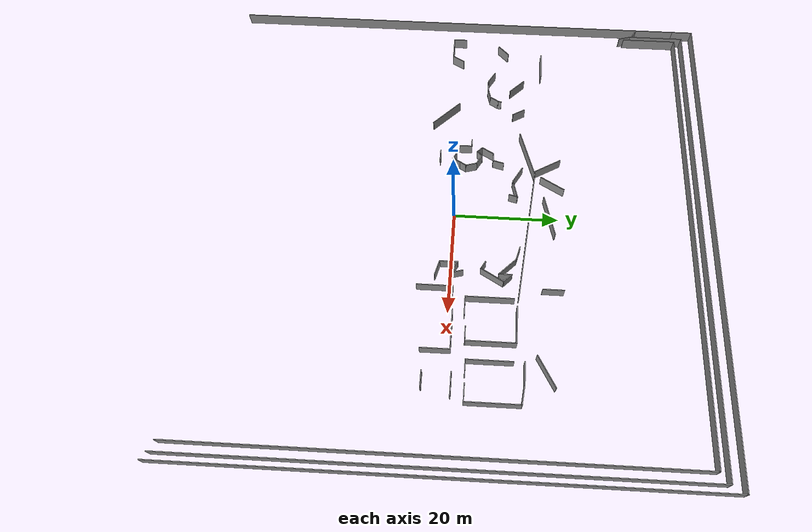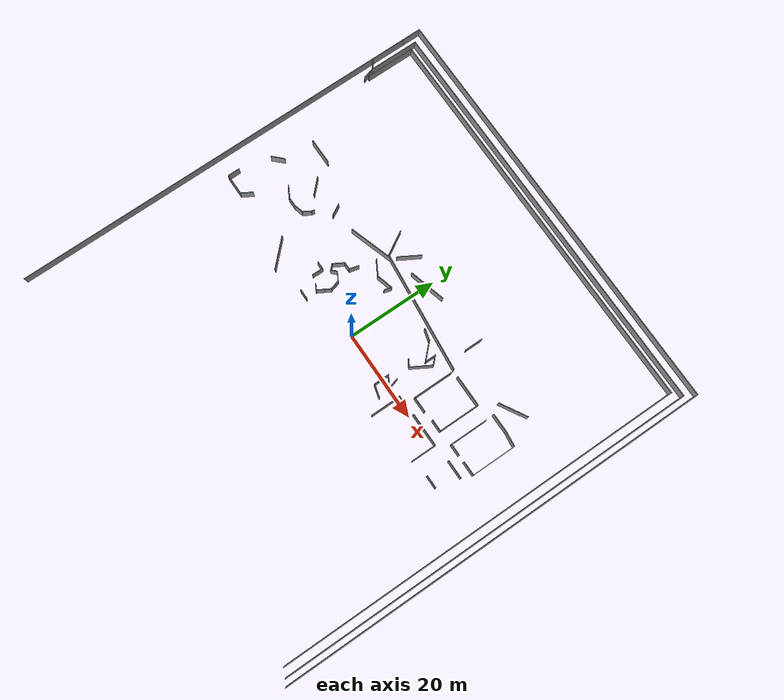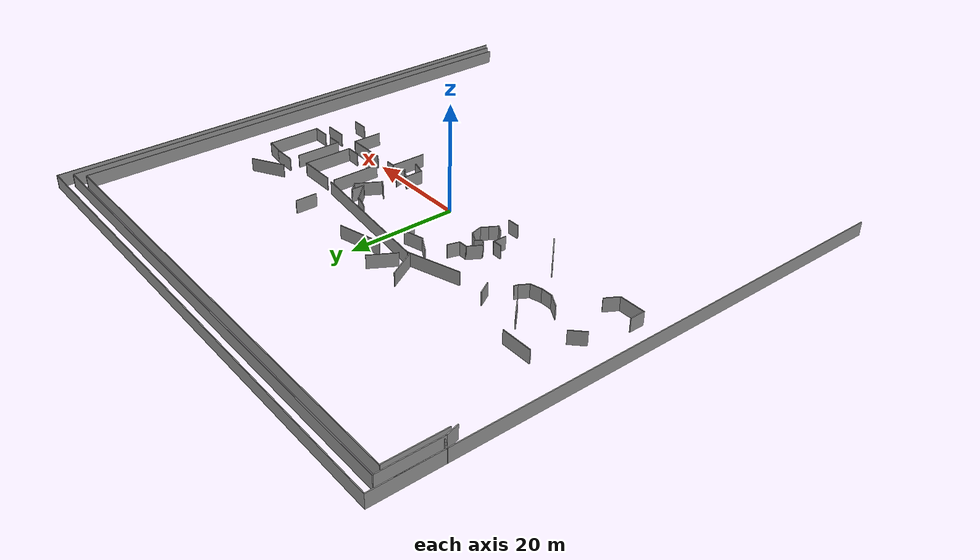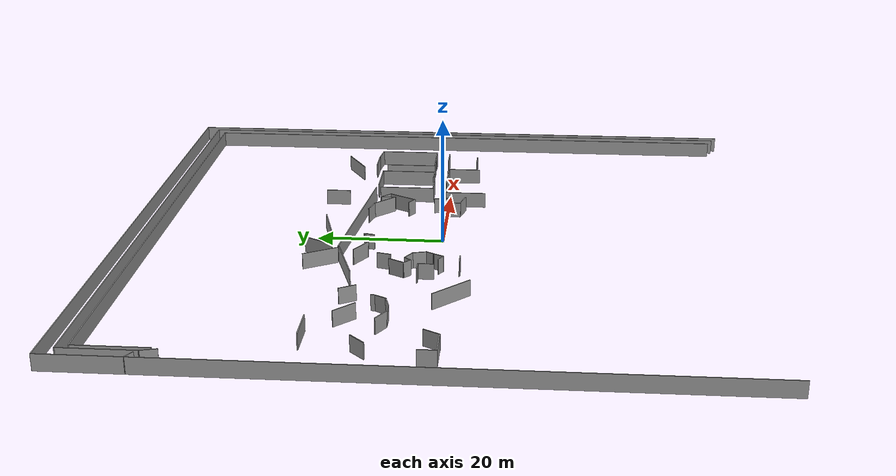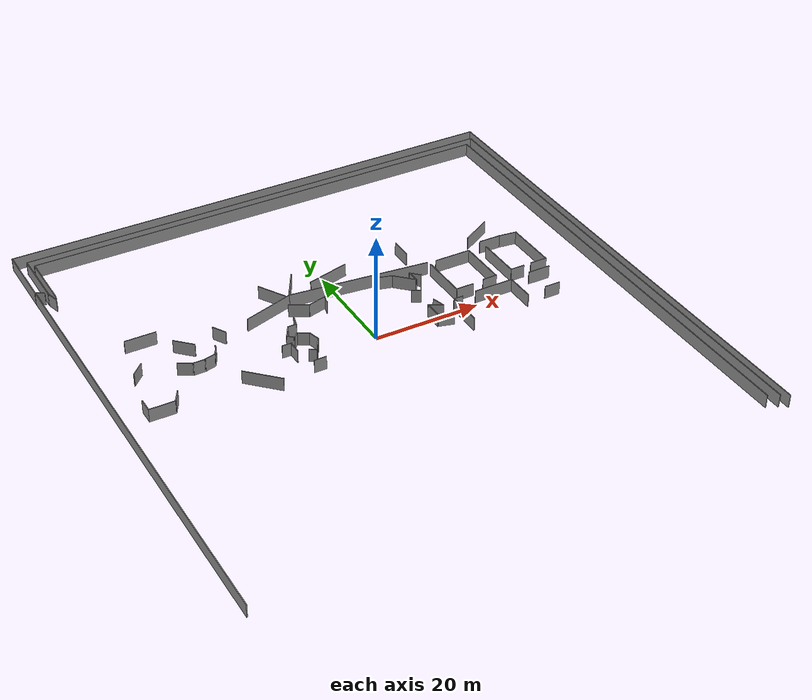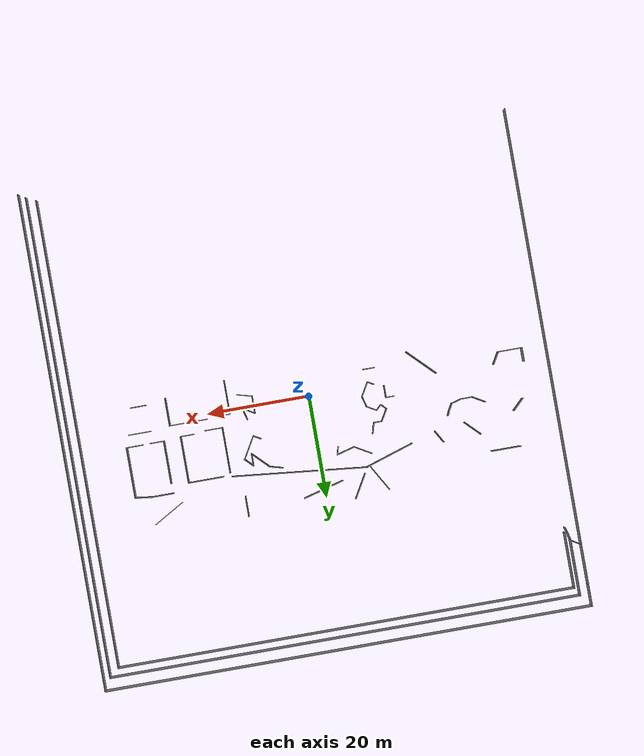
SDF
<sdf version="1.6">
 <model name="zee_floor">
  <pose>0.886578 0.586712 0 0 -0 0</pose>
  <link name="Wall_0">
   <collision name="Wall_0_Collision">
    <geometry><box><size>26.4253 0.15 2.5</size></box></geometry>
    <pose>0 0 1.25 0 -0 0</pose>
   </collision>
   <visual name="Wall_0_Visual">
    <pose>0 0 1.25 0 -0 0</pose>
    <geometry><box><size>26.4253 0.15 2.5</size></box></geometry>
    <material>
     <script><uri>file://media/materials/scripts/gazebo.material</uri><name>Gazebo/Grey</name></script>
     <ambient>1 1 1 1</ambient>
    </material>
    <meta><layer>0</layer></meta>
   </visual>
   <pose>3.36463 13.4505 0 0 -0 -0.104972</pose>
  </link>
  <link name="Wall_127">
   <collision name="Wall_127_Collision">
    <geometry><box><size>93.5 0.15 2.5</size></box></geometry>
    <pose>0 0 1.25 0 -0 0</pose>
   </collision>
   <visual name="Wall_127_Visual">
    <pose>0 0 1.25 0 -0 0</pose>
    <geometry><box><size>93.5 0.15 2.5</size></box></geometry>
    <material>
     <script><uri>file://media/materials/scripts/gazebo.material</uri><name>Gazebo/Grey</name></script>
     <ambient>1 1 1 1</ambient>
    </material>
    <meta><layer>0</layer></meta>
   </visual>
   <pose>-47.7863 -2.125 0 0 -0 -1.5708</pose>
  </link>
  <link name="Wall_129">
   <collision name="Wall_129_Collision">
    <geometry><box><size>97.75 0.15 2.5</size></box></geometry>
    <pose>0 0 1.25 0 -0 0</pose>
   </collision>
   <visual name="Wall_129_Visual">
    <pose>0 0 1.25 0 -0 0</pose>
    <geometry><box><size>97.75 0.15 2.5</size></box></geometry>
    <material>
     <script><uri>file://media/materials/scripts/gazebo.material</uri><name>Gazebo/Grey</name></script>
     <ambient>1 1 1 1</ambient>
    </material>
    <meta><layer>0</layer></meta>
   </visual>
   <pose>47.8137 -0 0 0 -0 1.5708</pose>
  </link>
  <link name="Wall_13">
   <collision name="Wall_13_Collision">
    <geometry><box><size>2.25 0.15 2.5</size></box></geometry>
    <pose>0 0 1.25 0 -0 0</pose>
   </collision>
   <visual name="Wall_13_Visual">
    <pose>0 0 1.25 0 -0 0</pose>
    <geometry><box><size>2.25 0.15 2.5</size></box></geometry>
    <material>
     <script><uri>file://media/materials/scripts/gazebo.material</uri><name>Gazebo/Grey</name></script>
     <ambient>1 1 1 1</ambient>
    </material>
    <meta><layer>0</layer></meta>
   </visual>
   <pose>-13.2389 -3.96174 0 0 -0 0</pose>
  </link>
  <link name="Wall_130">
   <collision name="Wall_130_Collision">
    <geometry><box><size>95.75 0.15 2.5</size></box></geometry>
    <pose>0 0 1.25 0 -0 0</pose>
   </collision>
   <visual name="Wall_130_Visual">
    <pose>0 0 1.25 0 -0 0</pose>
    <geometry><box><size>95.75 0.15 2.5</size></box></geometry>
    <material>
     <script><uri>file://media/materials/scripts/gazebo.material</uri><name>Gazebo/Grey</name></script>
     <ambient>1 1 1 1</ambient>
    </material>
    <meta><layer>0</layer></meta>
   </visual>
   <pose>0.013723 48.8 0 0 -0 3.14159</pose>
  </link>
  <link name="Wall_131">
   <collision name="Wall_131_Collision">
    <geometry><box><size>12.25 0.15 2.5</size></box></geometry>
    <pose>0 0 1.25 0 -0 0</pose>
   </collision>
   <visual name="Wall_131_Visual">
    <pose>0 0 1.25 0 -0 0</pose>
    <geometry><box><size>12.25 0.15 2.5</size></box></geometry>
    <material>
     <script><uri>file://media/materials/scripts/gazebo.material</uri><name>Gazebo/Grey</name></script>
     <ambient>1 1 1 1</ambient>
    </material>
    <meta><layer>0</layer></meta>
   </visual>
   <pose>-47.7863 42.75 0 0 -0 -1.5708</pose>
  </link>
  <link name="Wall_132">
   <collision name="Wall_132_Collision">
    <geometry><box><size>1.75 0.15 2.5</size></box></geometry>
    <pose>0 0 1.25 0 -0 0</pose>
   </collision>
   <visual name="Wall_132_Visual">
    <pose>0 0 1.25 0 -0 0</pose>
    <geometry><box><size>1.75 0.15 2.5</size></box></geometry>
    <material>
     <script><uri>file://media/materials/scripts/gazebo.material</uri><name>Gazebo/Grey</name></script>
     <ambient>1 1 1 1</ambient>
    </material>
    <meta><layer>0</layer></meta>
   </visual>
   <pose>-47.0935 36.3 0 0 -0 -0.523599</pose>
  </link>
  <link name="Wall_135">
   <collision name="Wall_135_Collision">
    <geometry><box><size>94.5 0.15 2.5</size></box></geometry>
    <pose>0 0 1.25 0 -0 0</pose>
   </collision>
   <visual name="Wall_135_Visual">
    <pose>0 0 1.25 0 -0 0</pose>
    <geometry><box><size>94.5 0.15 2.5</size></box></geometry>
    <material>
     <script><uri>file://media/materials/scripts/gazebo.material</uri><name>Gazebo/Grey</name></script>
     <ambient>1 1 1 1</ambient>
    </material>
    <meta><layer>0</layer></meta>
   </visual>
   <pose>46.4494 -0.775 0 0 -0 1.5708</pose>
  </link>
  <link name="Wall_136">
   <collision name="Wall_136_Collision">
    <geometry><box><size>92.5 0.15 2.5</size></box></geometry>
    <pose>0 0 1.25 0 -0 0</pose>
   </collision>
   <visual name="Wall_136_Visual">
    <pose>0 0 1.25 0 -0 0</pose>
    <geometry><box><size>92.5 0.15 2.5</size></box></geometry>
    <material>
     <script><uri>file://media/materials/scripts/gazebo.material</uri><name>Gazebo/Grey</name></script>
     <ambient>1 1 1 1</ambient>
    </material>
    <meta><layer>0</layer></meta>
   </visual>
   <pose>0.274363 46.4 0 0 -0 3.14159</pose>
  </link>
  <link name="Wall_137">
   <collision name="Wall_137_Collision">
    <geometry><box><size>11.25 0.15 2.5</size></box></geometry>
    <pose>0 0 1.25 0 -0 0</pose>
   </collision>
   <visual name="Wall_137_Visual">
    <pose>0 0 1.25 0 -0 0</pose>
    <geometry><box><size>11.25 0.15 2.5</size></box></geometry>
    <material>
     <script><uri>file://media/materials/scripts/gazebo.material</uri><name>Gazebo/Grey</name></script>
     <ambient>1 1 1 1</ambient>
    </material>
    <meta><layer>0</layer></meta>
   </visual>
   <pose>-45.9006 40.85 0 0 -0 -1.5708</pose>
  </link>
  <link name="Wall_138">
   <collision name="Wall_138_Collision">
    <geometry><box><size>2.5 0.15 2.5</size></box></geometry>
    <pose>0 0 1.25 0 -0 0</pose>
   </collision>
   <visual name="Wall_138_Visual">
    <pose>0 0 1.25 0 -0 0</pose>
    <geometry><box><size>2.5 0.15 2.5</size></box></geometry>
    <material>
     <script><uri>file://media/materials/scripts/gazebo.material</uri><name>Gazebo/Grey</name></script>
     <ambient>1 1 1 1</ambient>
    </material>
    <meta><layer>0</layer></meta>
   </visual>
   <pose>-45.5965 34.165 0 0 -0 -1.309</pose>
  </link>
  <link name="Wall_141">
   <collision name="Wall_141_Collision">
    <geometry><box><size>92 0.15 2.5</size></box></geometry>
    <pose>0 0 1.25 0 -0 0</pose>
   </collision>
   <visual name="Wall_141_Visual">
    <pose>0 0 1.25 0 -0 0</pose>
    <geometry><box><size>92 0.15 2.5</size></box></geometry>
    <material>
     <script><uri>file://media/materials/scripts/gazebo.material</uri><name>Gazebo/Grey</name></script>
     <ambient>1 1 1 1</ambient>
    </material>
    <meta><layer>0</layer></meta>
   </visual>
   <pose>44.5576 -1.14493 0 0 -0 1.5708</pose>
  </link>
  <link name="Wall_142">
   <collision name="Wall_142_Collision">
    <geometry><box><size>89.75 0.15 2.5</size></box></geometry>
    <pose>0 0 1.25 0 -0 0</pose>
   </collision>
   <visual name="Wall_142_Visual">
    <pose>0 0 1.25 0 -0 0</pose>
    <geometry><box><size>89.75 0.15 2.5</size></box></geometry>
    <material>
     <script><uri>file://media/materials/scripts/gazebo.material</uri><name>Gazebo/Grey</name></script>
     <ambient>1 1 1 1</ambient>
    </material>
    <meta><layer>0</layer></meta>
   </visual>
   <pose>-0.242412 44.7801 0 0 -0 3.14159</pose>
  </link>
  <link name="Wall_143">
   <collision name="Wall_143_Collision">
    <geometry><box><size>11 0.15 2.5</size></box></geometry>
    <pose>0 0 1.25 0 -0 0</pose>
   </collision>
   <visual name="Wall_143_Visual">
    <pose>0 0 1.25 0 -0 0</pose>
    <geometry><box><size>11 0.15 2.5</size></box></geometry>
    <material>
     <script><uri>file://media/materials/scripts/gazebo.material</uri><name>Gazebo/Grey</name></script>
     <ambient>1 1 1 1</ambient>
    </material>
    <meta><layer>0</layer></meta>
   </visual>
   <pose>-45.0424 39.3551 0 0 -0 -1.5708</pose>
  </link>
  <link name="Wall_15">
   <collision name="Wall_15_Collision">
    <geometry><box><size>1.75 0.15 2.5</size></box></geometry>
    <pose>0 0 1.25 0 -0 0</pose>
   </collision>
   <visual name="Wall_15_Visual">
    <pose>0 0 1.25 0 -0 0</pose>
    <geometry><box><size>1.75 0.15 2.5</size></box></geometry>
    <material>
     <script><uri>file://media/materials/scripts/gazebo.material</uri><name>Gazebo/Grey</name></script>
     <ambient>1 1 1 1</ambient>
    </material>
    <meta><layer>0</layer></meta>
   </visual>
   <pose>-16.3464 2.1476 0 0 -0 0</pose>
  </link>
  <link name="Wall_16">
   <collision name="Wall_16_Collision">
    <geometry><box><size>2.5 0.15 2.5</size></box></geometry>
    <pose>0 0 1.25 0 -0 0</pose>
   </collision>
   <visual name="Wall_16_Visual">
    <pose>0 0 1.25 0 -0 0</pose>
    <geometry><box><size>2.5 0.15 2.5</size></box></geometry>
    <material>
     <script><uri>file://media/materials/scripts/gazebo.material</uri><name>Gazebo/Grey</name></script>
     <ambient>1 1 1 1</ambient>
    </material>
    <meta><layer>0</layer></meta>
   </visual>
   <pose>-15.5464 0.972602 0 0 -0 -1.5708</pose>
  </link>
  <link name="Wall_163">
   <collision name="Wall_163_Collision">
    <geometry><box><size>5.75 0.15 2.5</size></box></geometry>
    <pose>0 0 1.25 0 -0 0</pose>
   </collision>
   <visual name="Wall_163_Visual">
    <pose>0 0 1.25 0 -0 0</pose>
    <geometry><box><size>5.75 0.15 2.5</size></box></geometry>
    <material>
     <script><uri>file://media/materials/scripts/gazebo.material</uri><name>Gazebo/Grey</name></script>
     <ambient>1 1 1 1</ambient>
    </material>
    <meta><layer>0</layer></meta>
   </visual>
   <pose>-11.6937 17.3049 0 0 -0 2.0944</pose>
  </link>
  <link name="Wall_165">
   <collision name="Wall_165_Collision">
    <geometry><box><size>5.25 0.15 2.5</size></box></geometry>
    <pose>0 0 1.25 0 -0 0</pose>
   </collision>
   <visual name="Wall_165_Visual">
    <pose>0 0 1.25 0 -0 0</pose>
    <geometry><box><size>5.25 0.15 2.5</size></box></geometry>
    <material>
     <script><uri>file://media/materials/scripts/gazebo.material</uri><name>Gazebo/Grey</name></script>
     <ambient>1 1 1 1</ambient>
    </material>
    <meta><layer>0</layer></meta>
   </visual>
   <pose>-7.70866 18.2113 0 0 -0 1.0472</pose>
  </link>
  <link name="Wall_167">
   <collision name="Wall_167_Collision">
    <geometry><box><size>8.25 0.15 2.5</size></box></geometry>
    <pose>0 0 1.25 0 -0 0</pose>
   </collision>
   <visual name="Wall_167_Visual">
    <pose>0 0 1.25 0 -0 0</pose>
    <geometry><box><size>8.25 0.15 2.5</size></box></geometry>
    <material>
     <script><uri>file://media/materials/scripts/gazebo.material</uri><name>Gazebo/Grey</name></script>
     <ambient>1 1 1 1</ambient>
    </material>
    <meta><layer>0</layer></meta>
   </visual>
   <pose>-0.580004 17.6126 0 0 -0 0.261799</pose>
  </link>
  <link name="Wall_169">
   <collision name="Wall_169_Collision">
    <geometry><box><size>4 0.15 2.5</size></box></geometry>
    <pose>0 0 1.25 0 -0 0</pose>
   </collision>
   <visual name="Wall_169_Visual">
    <pose>0 0 1.25 0 -0 0</pose>
    <geometry><box><size>4 0.15 2.5</size></box></geometry>
    <material>
     <script><uri>file://media/materials/scripts/gazebo.material</uri><name>Gazebo/Grey</name></script>
     <ambient>1 1 1 1</ambient>
    </material>
    <meta><layer>0</layer></meta>
   </visual>
   <pose>14.5975 18.3023 0 0 -0 1.5708</pose>
  </link>
  <link name="Wall_171">
   <collision name="Wall_171_Collision">
    <geometry><box><size>6.5 0.15 2.5</size></box></geometry>
    <pose>0 0 1.25 0 -0 0</pose>
   </collision>
   <visual name="Wall_171_Visual">
    <pose>0 0 1.25 0 -0 0</pose>
    <geometry><box><size>6.5 0.15 2.5</size></box></geometry>
    <material>
     <script><uri>file://media/materials/scripts/gazebo.material</uri><name>Gazebo/Grey</name></script>
     <ambient>1 1 1 1</ambient>
    </material>
    <meta><layer>0</layer></meta>
   </visual>
   <pose>29.6992 17.029 0 0 -0 0.523599</pose>
  </link>
  <link name="Wall_18">
   <collision name="Wall_18_Collision">
    <geometry><box><size>1.5 0.15 2.5</size></box></geometry>
    <pose>0 0 1.25 0 -0 0</pose>
   </collision>
   <visual name="Wall_18_Visual">
    <pose>0 0 1.25 0 -0 0</pose>
    <geometry><box><size>1.5 0.15 2.5</size></box></geometry>
    <material>
     <script><uri>file://media/materials/scripts/gazebo.material</uri><name>Gazebo/Grey</name></script>
     <ambient>1 1 1 1</ambient>
    </material>
    <meta><layer>0</layer></meta>
   </visual>
   <pose>-13.0774 -1.1172 0 0 -0 -0.523599</pose>
  </link>
  <link name="Wall_187">
   <collision name="Wall_187_Collision">
    <geometry><box><size>2.75 0.15 2.5</size></box></geometry>
    <pose>0 0 1.25 0 -0 0</pose>
   </collision>
   <visual name="Wall_187_Visual">
    <pose>0 0 1.25 0 -0 0</pose>
    <geometry><box><size>2.75 0.15 2.5</size></box></geometry>
    <material>
     <script><uri>file://media/materials/scripts/gazebo.material</uri><name>Gazebo/Grey</name></script>
     <ambient>1 1 1 1</ambient>
    </material>
    <meta><layer>0</layer></meta>
   </visual>
   <pose>-43.0551 -1.49284 0 0 -0 -1.5708</pose>
  </link>
  <link name="Wall_188">
   <collision name="Wall_188_Collision">
    <geometry><box><size>4.75 0.15 2.5</size></box></geometry>
    <pose>0 0 1.25 0 -0 0</pose>
   </collision>
   <visual name="Wall_188_Visual">
    <pose>0 0 1.25 0 -0 0</pose>
    <geometry><box><size>4.75 0.15 2.5</size></box></geometry>
    <material>
     <script><uri>file://media/materials/scripts/gazebo.material</uri><name>Gazebo/Grey</name></script>
     <ambient>1 1 1 1</ambient>
    </material>
    <meta><layer>0</layer></meta>
   </visual>
   <pose>-40.7551 -2.79284 0 0 -0 0</pose>
  </link>
  <link name="Wall_189">
   <collision name="Wall_189_Collision">
    <geometry><box><size>2.75 0.15 2.5</size></box></geometry>
    <pose>0 0 1.25 0 -0 0</pose>
   </collision>
   <visual name="Wall_189_Visual">
    <pose>0 0 1.25 0 -0 0</pose>
    <geometry><box><size>2.75 0.15 2.5</size></box></geometry>
    <material>
     <script><uri>file://media/materials/scripts/gazebo.material</uri><name>Gazebo/Grey</name></script>
     <ambient>1 1 1 1</ambient>
    </material>
    <meta><layer>0</layer></meta>
   </visual>
   <pose>-37.8051 -1.667 0 0 -0 1.0472</pose>
  </link>
  <link name="Wall_19">
   <collision name="Wall_19_Collision">
    <geometry><box><size>1.88298 0.15 2.5</size></box></geometry>
    <pose>0 0 1.25 0 -0 0</pose>
   </collision>
   <visual name="Wall_19_Visual">
    <pose>0 0 1.25 0 -0 0</pose>
    <geometry><box><size>1.88298 0.15 2.5</size></box></geometry>
    <material>
     <script><uri>file://media/materials/scripts/gazebo.material</uri><name>Gazebo/Grey</name></script>
     <ambient>1 1 1 1</ambient>
    </material>
    <meta><layer>0</layer></meta>
   </visual>
   <pose>-12.1071 -0.703548 0 0 -0 1.04892</pose>
  </link>
  <link name="Wall_194">
   <collision name="Wall_194_Collision">
    <geometry><box><size>2.75 0.15 2.5</size></box></geometry>
    <pose>0 0 1.25 0 -0 0</pose>
   </collision>
   <visual name="Wall_194_Visual">
    <pose>0 0 1.25 0 -0 0</pose>
    <geometry><box><size>2.75 0.15 2.5</size></box></geometry>
    <material>
     <script><uri>file://media/materials/scripts/gazebo.material</uri><name>Gazebo/Grey</name></script>
     <ambient>1 1 1 1</ambient>
    </material>
    <meta><layer>0</layer></meta>
   </visual>
   <pose>-33.1476 5.60743 0 0 -0 -0.523599</pose>
  </link>
  <link name="Wall_195">
   <collision name="Wall_195_Collision">
    <geometry><box><size>2.25 0.15 2.5</size></box></geometry>
    <pose>0 0 1.25 0 -0 0</pose>
   </collision>
   <visual name="Wall_195_Visual">
    <pose>0 0 1.25 0 -0 0</pose>
    <geometry><box><size>2.25 0.15 2.5</size></box></geometry>
    <material>
     <script><uri>file://media/materials/scripts/gazebo.material</uri><name>Gazebo/Grey</name></script>
     <ambient>1 1 1 1</ambient>
    </material>
    <meta><layer>0</layer></meta>
   </visual>
   <pose>-30.9718 4.95744 0 0 -0 0</pose>
  </link>
  <link name="Wall_196">
   <collision name="Wall_196_Collision">
    <geometry><box><size>2.25 0.15 2.5</size></box></geometry>
    <pose>0 0 1.25 0 -0 0</pose>
   </collision>
   <visual name="Wall_196_Visual">
    <pose>0 0 1.25 0 -0 0</pose>
    <geometry><box><size>2.25 0.15 2.5</size></box></geometry>
    <material>
     <script><uri>file://media/materials/scripts/gazebo.material</uri><name>Gazebo/Grey</name></script>
     <ambient>1 1 1 1</ambient>
    </material>
    <meta><layer>0</layer></meta>
   </visual>
   <pose>-28.9075 5.22919 0 0 -0 0.261799</pose>
  </link>
  <link name="Wall_197">
   <collision name="Wall_197_Collision">
    <geometry><box><size>2 0.15 2.5</size></box></geometry>
    <pose>0 0 1.25 0 -0 0</pose>
   </collision>
   <visual name="Wall_197_Visual">
    <pose>0 0 1.25 0 -0 0</pose>
    <geometry><box><size>2 0.15 2.5</size></box></geometry>
    <material>
     <script><uri>file://media/materials/scripts/gazebo.material</uri><name>Gazebo/Grey</name></script>
     <ambient>1 1 1 1</ambient>
    </material>
    <meta><layer>0</layer></meta>
   </visual>
   <pose>-27.4308 6.30203 0 0 -0 1.0472</pose>
  </link>
  <link name="Wall_198">
   <collision name="Wall_198_Collision">
    <geometry><box><size>0.75 0.15 2.5</size></box></geometry>
    <pose>0 0 1.25 0 -0 0</pose>
   </collision>
   <visual name="Wall_198_Visual">
    <pose>0 0 1.25 0 -0 0</pose>
    <geometry><box><size>0.75 0.15 2.5</size></box></geometry>
    <material>
     <script><uri>file://media/materials/scripts/gazebo.material</uri><name>Gazebo/Grey</name></script>
     <ambient>1 1 1 1</ambient>
    </material>
    <meta><layer>0</layer></meta>
   </visual>
   <pose>-26.8907 7.39288 0 0 -0 1.309</pose>
  </link>
  <link name="Wall_20">
   <collision name="Wall_20_Collision">
    <geometry><box><size>1.5 0.15 2.5</size></box></geometry>
    <pose>0 0 1.25 0 -0 0</pose>
   </collision>
   <visual name="Wall_20_Visual">
    <pose>0 0 1.25 0 -0 0</pose>
    <geometry><box><size>1.5 0.15 2.5</size></box></geometry>
    <material>
     <script><uri>file://media/materials/scripts/gazebo.material</uri><name>Gazebo/Grey</name></script>
     <ambient>1 1 1 1</ambient>
    </material>
    <meta><layer>0</layer></meta>
   </visual>
   <pose>-11.3377 0.632169 0 0 -0 1.0472</pose>
  </link>
  <link name="Wall_200">
   <collision name="Wall_200_Collision">
    <geometry><box><size>7.25 0.15 2.5</size></box></geometry>
    <pose>0 0 1.25 0 -0 0</pose>
   </collision>
   <visual name="Wall_200_Visual">
    <pose>0 0 1.25 0 -0 0</pose>
    <geometry><box><size>7.25 0.15 2.5</size></box></geometry>
    <material>
     <script><uri>file://media/materials/scripts/gazebo.material</uri><name>Gazebo/Grey</name></script>
     <ambient>1 1 1 1</ambient>
    </material>
    <meta><layer>0</layer></meta>
   </visual>
   <pose>-23.4139 -3.3285 0 0 -0 -0.785398</pose>
  </link>
  <link name="Wall_208">
   <collision name="Wall_208_Collision">
    <geometry><box><size>3 0.15 2.5</size></box></geometry>
    <pose>0 0 1.25 0 -0 0</pose>
   </collision>
   <visual name="Wall_208_Visual">
    <pose>0 0 1.25 0 -0 0</pose>
    <geometry><box><size>3 0.15 2.5</size></box></geometry>
    <material>
     <script><uri>file://media/materials/scripts/gazebo.material</uri><name>Gazebo/Grey</name></script>
     <ambient>1 1 1 1</ambient>
    </material>
    <meta><layer>0</layer></meta>
   </visual>
   <pose>-40.5754 7.89466 0 0 -0 0.785398</pose>
  </link>
  <link name="Wall_21">
   <collision name="Wall_21_Collision">
    <geometry><box><size>2.25 0.15 2.5</size></box></geometry>
    <pose>0 0 1.25 0 -0 0</pose>
   </collision>
   <visual name="Wall_21_Visual">
    <pose>0 0 1.25 0 -0 0</pose>
    <geometry><box><size>2.25 0.15 2.5</size></box></geometry>
    <material>
     <script><uri>file://media/materials/scripts/gazebo.material</uri><name>Gazebo/Grey</name></script>
     <ambient>1 1 1 1</ambient>
    </material>
    <meta><layer>0</layer></meta>
   </visual>
   <pose>-11.2719 2.23096 0 0 -0 1.8326</pose>
  </link>
  <link name="Wall_210">
   <collision name="Wall_210_Collision">
    <geometry><box><size>4 0.15 2.5</size></box></geometry>
    <pose>0 0 1.25 0 -0 0</pose>
   </collision>
   <visual name="Wall_210_Visual">
    <pose>0 0 1.25 0 -0 0</pose>
    <geometry><box><size>4 0.15 2.5</size></box></geometry>
    <material>
     <script><uri>file://media/materials/scripts/gazebo.material</uri><name>Gazebo/Grey</name></script>
     <ambient>1 1 1 1</ambient>
    </material>
    <meta><layer>0</layer></meta>
   </visual>
   <pose>-31.057 10.937 0 0 -0 2.35619</pose>
  </link>
  <link name="Wall_212">
   <collision name="Wall_212_Collision">
    <geometry><box><size>2.75 0.15 2.5</size></box></geometry>
    <pose>0 0 1.25 0 -0 0</pose>
   </collision>
   <visual name="Wall_212_Visual">
    <pose>0 0 1.25 0 -0 0</pose>
    <geometry><box><size>2.75 0.15 2.5</size></box></geometry>
    <material>
     <script><uri>file://media/materials/scripts/gazebo.material</uri><name>Gazebo/Grey</name></script>
     <ambient>1 1 1 1</ambient>
    </material>
    <meta><layer>0</layer></meta>
   </visual>
   <pose>-24.4023 11.4092 0 0 -0 2.0944</pose>
  </link>
  <link name="Wall_214">
   <collision name="Wall_214_Collision">
    <geometry><box><size>5.75 0.15 2.5</size></box></geometry>
    <pose>0 0 1.25 0 -0 0</pose>
   </collision>
   <visual name="Wall_214_Visual">
    <pose>0 0 1.25 0 -0 0</pose>
    <geometry><box><size>5.75 0.15 2.5</size></box></geometry>
    <material>
     <script><uri>file://media/materials/scripts/gazebo.material</uri><name>Gazebo/Grey</name></script>
     <ambient>1 1 1 1</ambient>
    </material>
    <meta><layer>0</layer></meta>
   </visual>
   <pose>-36.8018 15.9439 0 0 -0 0</pose>
  </link>
  <link name="Wall_216">
   <collision name="Wall_216_Collision">
    <geometry><box><size>8.5 0.15 2.5</size></box></geometry>
    <pose>0 0 1.25 0 -0 0</pose>
   </collision>
   <visual name="Wall_216_Visual">
    <pose>0 0 1.25 0 -0 0</pose>
    <geometry><box><size>8.5 0.15 2.5</size></box></geometry>
    <material>
     <script><uri>file://media/materials/scripts/gazebo.material</uri><name>Gazebo/Grey</name></script>
     <ambient>1 1 1 1</ambient>
    </material>
    <meta><layer>0</layer></meta>
   </visual>
   <pose>28.3039 7.19452 0 0 -0 -1.5708</pose>
  </link>
  <link name="Wall_217">
   <collision name="Wall_217_Collision">
    <geometry><box><size>2.75 0.15 2.5</size></box></geometry>
    <pose>0 0 1.25 0 -0 0</pose>
   </collision>
   <visual name="Wall_217_Visual">
    <pose>0 0 1.25 0 -0 0</pose>
    <geometry><box><size>2.75 0.15 2.5</size></box></geometry>
    <material>
     <script><uri>file://media/materials/scripts/gazebo.material</uri><name>Gazebo/Grey</name></script>
     <ambient>1 1 1 1</ambient>
    </material>
    <meta><layer>0</layer></meta>
   </visual>
   <pose>29.6039 3.01952 0 0 -0 0</pose>
  </link>
  <link name="Wall_22">
   <collision name="Wall_22_Collision">
    <geometry><box><size>2.25 0.15 2.5</size></box></geometry>
    <pose>0 0 1.25 0 -0 0</pose>
   </collision>
   <visual name="Wall_22_Visual">
    <pose>0 0 1.25 0 -0 0</pose>
    <geometry><box><size>2.25 0.15 2.5</size></box></geometry>
    <material>
     <script><uri>file://media/materials/scripts/gazebo.material</uri><name>Gazebo/Grey</name></script>
     <ambient>1 1 1 1</ambient>
    </material>
    <meta><layer>0</layer></meta>
   </visual>
   <pose>-12.453 3.77018 0 0 -0 2.61799</pose>
  </link>
  <link name="Wall_220">
   <collision name="Wall_220_Collision">
    <geometry><box><size>4.25 0.15 2.5</size></box></geometry>
    <pose>0 0 1.25 0 -0 0</pose>
   </collision>
   <visual name="Wall_220_Visual">
    <pose>0 0 1.25 0 -0 0</pose>
    <geometry><box><size>4.25 0.15 2.5</size></box></geometry>
    <material>
     <script><uri>file://media/materials/scripts/gazebo.material</uri><name>Gazebo/Grey</name></script>
     <ambient>1 1 1 1</ambient>
    </material>
    <meta><layer>0</layer></meta>
   </visual>
   <pose>30.255 13.309 0 0 -0 0</pose>
  </link>
  <link name="Wall_222">
   <collision name="Wall_222_Collision">
    <geometry><box><size>3.25 0.15 2.5</size></box></geometry>
    <pose>0 0 1.25 0 -0 0</pose>
   </collision>
   <visual name="Wall_222_Visual">
    <pose>0 0 1.25 0 -0 0</pose>
    <geometry><box><size>3.25 0.15 2.5</size></box></geometry>
    <material>
     <script><uri>file://media/materials/scripts/gazebo.material</uri><name>Gazebo/Grey</name></script>
     <ambient>1 1 1 1</ambient>
    </material>
    <meta><layer>0</layer></meta>
   </visual>
   <pose>34.0676 3.05626 0 0 -0 0</pose>
  </link>
  <link name="Wall_223">
   <collision name="Wall_223_Collision">
    <geometry><box><size>10 0.15 2.5</size></box></geometry>
    <pose>0 0 1.25 0 -0 0</pose>
   </collision>
   <visual name="Wall_223_Visual">
    <pose>0 0 1.25 0 -0 0</pose>
    <geometry><box><size>10 0.15 2.5</size></box></geometry>
    <material>
     <script><uri>file://media/materials/scripts/gazebo.material</uri><name>Gazebo/Grey</name></script>
     <ambient>1 1 1 1</ambient>
    </material>
    <meta><layer>0</layer></meta>
   </visual>
   <pose>35.6176 7.98126 0 0 -0 1.5708</pose>
  </link>
  <link name="Wall_224">
   <collision name="Wall_224_Collision">
    <geometry><box><size>3.48703 0.15 2.5</size></box></geometry>
    <pose>0 0 1.25 0 -0 0</pose>
   </collision>
   <visual name="Wall_224_Visual">
    <pose>0 0 1.25 0 -0 0</pose>
    <geometry><box><size>3.48703 0.15 2.5</size></box></geometry>
    <material>
     <script><uri>file://media/materials/scripts/gazebo.material</uri><name>Gazebo/Grey</name></script>
     <ambient>1 1 1 1</ambient>
    </material>
    <meta><layer>0</layer></meta>
   </visual>
   <pose>33.9613 13.1076 0 0 -0 3.02062</pose>
  </link>
  <link name="Wall_23">
   <collision name="Wall_23_Collision">
    <geometry><box><size>1.5 0.15 2.5</size></box></geometry>
    <pose>0 0 1.25 0 -0 0</pose>
   </collision>
   <visual name="Wall_23_Visual">
    <pose>0 0 1.25 0 -0 0</pose>
    <geometry><box><size>1.5 0.15 2.5</size></box></geometry>
    <material>
     <script><uri>file://media/materials/scripts/gazebo.material</uri><name>Gazebo/Grey</name></script>
     <ambient>1 1 1 1</ambient>
    </material>
    <meta><layer>0</layer></meta>
   </visual>
   <pose>-13.8396 3.81788 0 0 -0 -2.35619</pose>
  </link>
  <link name="Wall_232">
   <collision name="Wall_232_Collision">
    <geometry><box><size>4.25 0.15 2.5</size></box></geometry>
    <pose>0 0 1.25 0 -0 0</pose>
   </collision>
   <visual name="Wall_232_Visual">
    <pose>0 0 1.25 0 -0 0</pose>
    <geometry><box><size>4.25 0.15 2.5</size></box></geometry>
    <material>
     <script><uri>file://media/materials/scripts/gazebo.material</uri><name>Gazebo/Grey</name></script>
     <ambient>1 1 1 1</ambient>
    </material>
    <meta><layer>0</layer></meta>
   </visual>
   <pose>32.6482 0.712717 0 0 -0 0</pose>
  </link>
  <link name="Wall_24">
   <collision name="Wall_24_Collision">
    <geometry><box><size>1.5 0.15 2.5</size></box></geometry>
    <pose>0 0 1.25 0 -0 0</pose>
   </collision>
   <visual name="Wall_24_Visual">
    <pose>0 0 1.25 0 -0 0</pose>
    <geometry><box><size>1.5 0.15 2.5</size></box></geometry>
    <material>
     <script><uri>file://media/materials/scripts/gazebo.material</uri><name>Gazebo/Grey</name></script>
     <ambient>1 1 1 1</ambient>
    </material>
    <meta><layer>0</layer></meta>
   </visual>
   <pose>-14.7942 3.81788 0 0 -0 2.35619</pose>
  </link>
  <link name="Wall_25">
   <collision name="Wall_25_Collision">
    <geometry><box><size>2.75 0.15 2.5</size></box></geometry>
    <pose>0 0 1.25 0 -0 0</pose>
   </collision>
   <visual name="Wall_25_Visual">
    <pose>0 0 1.25 0 -0 0</pose>
    <geometry><box><size>2.75 0.15 2.5</size></box></geometry>
    <material>
     <script><uri>file://media/materials/scripts/gazebo.material</uri><name>Gazebo/Grey</name></script>
     <ambient>1 1 1 1</ambient>
    </material>
    <meta><layer>0</layer></meta>
   </visual>
   <pose>-14.6215 5.42101 0 0 -0 1.0472</pose>
  </link>
  <link name="Wall_26">
   <collision name="Wall_26_Collision">
    <geometry><box><size>1.75 0.15 2.5</size></box></geometry>
    <pose>0 0 1.25 0 -0 0</pose>
   </collision>
   <visual name="Wall_26_Visual">
    <pose>0 0 1.25 0 -0 0</pose>
    <geometry><box><size>1.75 0.15 2.5</size></box></geometry>
    <material>
     <script><uri>file://media/materials/scripts/gazebo.material</uri><name>Gazebo/Grey</name></script>
     <ambient>1 1 1 1</ambient>
    </material>
    <meta><layer>0</layer></meta>
   </visual>
   <pose>-13.1715 6.54685 0 0 -0 0</pose>
  </link>
  <link name="Wall_27">
   <collision name="Wall_27_Collision">
    <geometry><box><size>2.25 0.15 2.5</size></box></geometry>
    <pose>0 0 1.25 0 -0 0</pose>
   </collision>
   <visual name="Wall_27_Visual">
    <pose>0 0 1.25 0 -0 0</pose>
    <geometry><box><size>2.25 0.15 2.5</size></box></geometry>
    <material>
     <script><uri>file://media/materials/scripts/gazebo.material</uri><name>Gazebo/Grey</name></script>
     <ambient>1 1 1 1</ambient>
    </material>
    <meta><layer>0</layer></meta>
   </visual>
   <pose>-12.0998 7.56107 0 0 -0 1.309</pose>
  </link>
  <link name="Wall_5">
   <collision name="Wall_5_Collision">
    <geometry><box><size>9.87437 0.15 2.5</size></box></geometry>
    <pose>0 0 1.25 0 -0 0</pose>
   </collision>
   <visual name="Wall_5_Visual">
    <pose>0 0 1.25 0 -0 0</pose>
    <geometry><box><size>9.87437 0.15 2.5</size></box></geometry>
    <material>
     <script><uri>file://media/materials/scripts/gazebo.material</uri><name>Gazebo/Grey</name></script>
     <ambient>1 1 1 1</ambient>
    </material>
    <meta><layer>0</layer></meta>
   </visual>
   <pose>-14.333 13.2792 0 0 -0 0.30876</pose>
  </link>
  <link name="Wall_50">
   <collision name="Wall_50_Collision">
    <geometry><box><size>3.75 0.15 2.5</size></box></geometry>
    <pose>0 0 1.25 0 -0 0</pose>
   </collision>
   <visual name="Wall_50_Visual">
    <pose>0 0 1.25 0 -0 0</pose>
    <geometry><box><size>3.75 0.15 2.5</size></box></geometry>
    <material>
     <script><uri>file://media/materials/scripts/gazebo.material</uri><name>Gazebo/Grey</name></script>
     <ambient>1 1 1 1</ambient>
    </material>
    <meta><layer>0</layer></meta>
   </visual>
   <pose>-9.39565 11.4232 0 0 -0 -0.523599</pose>
  </link>
  <link name="Wall_51">
   <collision name="Wall_51_Collision">
    <geometry><box><size>3.75 0.15 2.5</size></box></geometry>
    <pose>0 0 1.25 0 -0 0</pose>
   </collision>
   <visual name="Wall_51_Visual">
    <pose>0 0 1.25 0 -0 0</pose>
    <geometry><box><size>3.75 0.15 2.5</size></box></geometry>
    <material>
     <script><uri>file://media/materials/scripts/gazebo.material</uri><name>Gazebo/Grey</name></script>
     <ambient>1 1 1 1</ambient>
    </material>
    <meta><layer>0</layer></meta>
   </visual>
   <pose>-6.09814 10.9891 0 0 -0 0.261799</pose>
  </link>
  <link name="Wall_52">
   <collision name="Wall_52_Collision">
    <geometry><box><size>1.75 0.15 2.5</size></box></geometry>
    <pose>0 0 1.25 0 -0 0</pose>
   </collision>
   <visual name="Wall_52_Visual">
    <pose>0 0 1.25 0 -0 0</pose>
    <geometry><box><size>1.75 0.15 2.5</size></box></geometry>
    <material>
     <script><uri>file://media/materials/scripts/gazebo.material</uri><name>Gazebo/Grey</name></script>
     <ambient>1 1 1 1</ambient>
    </material>
    <meta><layer>0</layer></meta>
   </visual>
   <pose>-4.56653 10.6822 0 0 -0 -1.8326</pose>
  </link>
  <link name="Wall_54">
   <collision name="Wall_54_Collision">
    <geometry><box><size>2.75 0.15 2.5</size></box></geometry>
    <pose>0 0 1.25 0 -0 0</pose>
   </collision>
   <visual name="Wall_54_Visual">
    <pose>0 0 1.25 0 -0 0</pose>
    <geometry><box><size>2.75 0.15 2.5</size></box></geometry>
    <material>
     <script><uri>file://media/materials/scripts/gazebo.material</uri><name>Gazebo/Grey</name></script>
     <ambient>1 1 1 1</ambient>
    </material>
    <meta><layer>0</layer></meta>
   </visual>
   <pose>7.67952 11.7757 0 0 -0 -0.261799</pose>
  </link>
  <link name="Wall_55">
   <collision name="Wall_55_Collision">
    <geometry><box><size>4.5 0.15 2.5</size></box></geometry>
    <pose>0 0 1.25 0 -0 0</pose>
   </collision>
   <visual name="Wall_55_Visual">
    <pose>0 0 1.25 0 -0 0</pose>
    <geometry><box><size>4.5 0.15 2.5</size></box></geometry>
    <material>
     <script><uri>file://media/materials/scripts/gazebo.material</uri><name>Gazebo/Grey</name></script>
     <ambient>1 1 1 1</ambient>
    </material>
    <meta><layer>0</layer></meta>
   </visual>
   <pose>10.4732 9.90124 0 0 -0 -0.785398</pose>
  </link>
  <link name="Wall_56">
   <collision name="Wall_56_Collision">
    <geometry><box><size>2.5 0.15 2.5</size></box></geometry>
    <pose>0 0 1.25 0 -0 0</pose>
   </collision>
   <visual name="Wall_56_Visual">
    <pose>0 0 1.25 0 -0 0</pose>
    <geometry><box><size>2.5 0.15 2.5</size></box></geometry>
    <material>
     <script><uri>file://media/materials/scripts/gazebo.material</uri><name>Gazebo/Grey</name></script>
     <ambient>1 1 1 1</ambient>
    </material>
    <meta><layer>0</layer></meta>
   </visual>
   <pose>12.0111 9.53829 0 0 -0 1.5708</pose>
  </link>
  <link name="Wall_57">
   <collision name="Wall_57_Collision">
    <geometry><box><size>2.25 0.15 2.5</size></box></geometry>
    <pose>0 0 1.25 0 -0 0</pose>
   </collision>
   <visual name="Wall_57_Visual">
    <pose>0 0 1.25 0 -0 0</pose>
    <geometry><box><size>2.25 0.15 2.5</size></box></geometry>
    <material>
     <script><uri>file://media/materials/scripts/gazebo.material</uri><name>Gazebo/Grey</name></script>
     <ambient>1 1 1 1</ambient>
    </material>
    <meta><layer>0</layer></meta>
   </visual>
   <pose>12.7536 9.97082 0 0 -0 -0.785398</pose>
  </link>
  <link name="Wall_58">
   <collision name="Wall_58_Collision">
    <geometry><box><size>5 0.15 2.5</size></box></geometry>
    <pose>0 0 1.25 0 -0 0</pose>
   </collision>
   <visual name="Wall_58_Visual">
    <pose>0 0 1.25 0 -0 0</pose>
    <geometry><box><size>5 0.15 2.5</size></box></geometry>
    <material>
     <script><uri>file://media/materials/scripts/gazebo.material</uri><name>Gazebo/Grey</name></script>
     <ambient>1 1 1 1</ambient>
    </material>
    <meta><layer>0</layer></meta>
   </visual>
   <pose>12.2836 7.12825 0 0 -0 -2.0944</pose>
  </link>
  <link name="Wall_59">
   <collision name="Wall_59_Collision">
    <geometry><box><size>1.75 0.15 2.5</size></box></geometry>
    <pose>0 0 1.25 0 -0 0</pose>
   </collision>
   <visual name="Wall_59_Visual">
    <pose>0 0 1.25 0 -0 0</pose>
    <geometry><box><size>1.75 0.15 2.5</size></box></geometry>
    <material>
     <script><uri>file://media/materials/scripts/gazebo.material</uri><name>Gazebo/Grey</name></script>
     <ambient>1 1 1 1</ambient>
    </material>
    <meta><layer>0</layer></meta>
   </visual>
   <pose>10.3782 5.42814 0 0 -0 2.61799</pose>
  </link>
  <link name="Wall_61">
   <collision name="Wall_61_Collision">
    <geometry><box><size>2.5 0.15 2.5</size></box></geometry>
    <pose>0 0 1.25 0 -0 0</pose>
   </collision>
   <visual name="Wall_61_Visual">
    <pose>0 0 1.25 0 -0 0</pose>
    <geometry><box><size>2.5 0.15 2.5</size></box></geometry>
    <material>
     <script><uri>file://media/materials/scripts/gazebo.material</uri><name>Gazebo/Grey</name></script>
     <ambient>1 1 1 1</ambient>
    </material>
    <meta><layer>0</layer></meta>
   </visual>
   <pose>11.9344 0.564254 0 0 -0 -1.309</pose>
  </link>
  <link name="Wall_62">
   <collision name="Wall_62_Collision">
    <geometry><box><size>2.75 0.15 2.5</size></box></geometry>
    <pose>0 0 1.25 0 -0 0</pose>
   </collision>
   <visual name="Wall_62_Visual">
    <pose>0 0 1.25 0 -0 0</pose>
    <geometry><box><size>2.75 0.15 2.5</size></box></geometry>
    <material>
     <script><uri>file://media/materials/scripts/gazebo.material</uri><name>Gazebo/Grey</name></script>
     <ambient>1 1 1 1</ambient>
    </material>
    <meta><layer>0</layer></meta>
   </visual>
   <pose>11.1127 0.079291 0 0 -0 2.61799</pose>
  </link>
  <link name="Wall_63">
   <collision name="Wall_63_Collision">
    <geometry><box><size>3.5 0.15 2.5</size></box></geometry>
    <pose>0 0 1.25 0 -0 0</pose>
   </collision>
   <visual name="Wall_63_Visual">
    <pose>0 0 1.25 0 -0 0</pose>
    <geometry><box><size>3.5 0.15 2.5</size></box></geometry>
    <material>
     <script><uri>file://media/materials/scripts/gazebo.material</uri><name>Gazebo/Grey</name></script>
     <ambient>1 1 1 1</ambient>
    </material>
    <meta><layer>0</layer></meta>
   </visual>
   <pose>9.98683 -0.945709 0 0 -0 -1.5708</pose>
  </link>
  <link name="Wall_64">
   <collision name="Wall_64_Collision">
    <geometry><box><size>3 0.15 2.5</size></box></geometry>
    <pose>0 0 1.25 0 -0 0</pose>
   </collision>
   <visual name="Wall_64_Visual">
    <pose>0 0 1.25 0 -0 0</pose>
    <geometry><box><size>3 0.15 2.5</size></box></geometry>
    <material>
     <script><uri>file://media/materials/scripts/gazebo.material</uri><name>Gazebo/Grey</name></script>
     <ambient>1 1 1 1</ambient>
    </material>
    <meta><layer>0</layer></meta>
   </visual>
   <pose>11.3633 -2.98953 0 0 -0 -0.261799</pose>
  </link>
  <link name="Wall_70">
   <collision name="Wall_70_Collision">
    <geometry><box><size>9 0.15 2.5</size></box></geometry>
    <pose>0 0 1.25 0 -0 0</pose>
   </collision>
   <visual name="Wall_70_Visual">
    <pose>0 0 1.25 0 -0 0</pose>
    <geometry><box><size>9 0.15 2.5</size></box></geometry>
    <material>
     <script><uri>file://media/materials/scripts/gazebo.material</uri><name>Gazebo/Grey</name></script>
     <ambient>1 1 1 1</ambient>
    </material>
    <meta><layer>0</layer></meta>
   </visual>
   <pose>16.696 6.84284 0 0 -0 -1.5708</pose>
  </link>
  <link name="Wall_71">
   <collision name="Wall_71_Collision">
    <geometry><box><size>3.5 0.15 2.5</size></box></geometry>
    <pose>0 0 1.25 0 -0 0</pose>
   </collision>
   <visual name="Wall_71_Visual">
    <pose>0 0 1.25 0 -0 0</pose>
    <geometry><box><size>3.5 0.15 2.5</size></box></geometry>
    <material>
     <script><uri>file://media/materials/scripts/gazebo.material</uri><name>Gazebo/Grey</name></script>
     <ambient>1 1 1 1</ambient>
    </material>
    <meta><layer>0</layer></meta>
   </visual>
   <pose>18.371 2.41784 0 0 -0 0</pose>
  </link>
  <link name="Wall_73">
   <collision name="Wall_73_Collision">
    <geometry><box><size>7 0.15 2.5</size></box></geometry>
    <pose>0 0 1.25 0 -0 0</pose>
   </collision>
   <visual name="Wall_73_Visual">
    <pose>0 0 1.25 0 -0 0</pose>
    <geometry><box><size>7 0.15 2.5</size></box></geometry>
    <material>
     <script><uri>file://media/materials/scripts/gazebo.material</uri><name>Gazebo/Grey</name></script>
     <ambient>1 1 1 1</ambient>
    </material>
    <meta><layer>0</layer></meta>
   </visual>
   <pose>21.5282 11.8307 0 0 -0 0</pose>
  </link>
  <link name="Wall_74">
   <collision name="Wall_74_Collision">
    <geometry><box><size>9.25 0.15 2.5</size></box></geometry>
    <pose>0 0 1.25 0 -0 0</pose>
   </collision>
   <visual name="Wall_74_Visual">
    <pose>0 0 1.25 0 -0 0</pose>
    <geometry><box><size>9.25 0.15 2.5</size></box></geometry>
    <material>
     <script><uri>file://media/materials/scripts/gazebo.material</uri><name>Gazebo/Grey</name></script>
     <ambient>1 1 1 1</ambient>
    </material>
    <meta><layer>0</layer></meta>
   </visual>
   <pose>24.9532 7.2807 0 0 -0 -1.5708</pose>
  </link>
  <link name="Wall_75">
   <collision name="Wall_75_Collision">
    <geometry><box><size>2.75 0.15 2.5</size></box></geometry>
    <pose>0 0 1.25 0 -0 0</pose>
   </collision>
   <visual name="Wall_75_Visual">
    <pose>0 0 1.25 0 -0 0</pose>
    <geometry><box><size>2.75 0.15 2.5</size></box></geometry>
    <material>
     <script><uri>file://media/materials/scripts/gazebo.material</uri><name>Gazebo/Grey</name></script>
     <ambient>1 1 1 1</ambient>
    </material>
    <meta><layer>0</layer></meta>
   </visual>
   <pose>23.6532 2.7307 0 0 -0 3.14159</pose>
  </link>
  <link name="Wall_77">
   <collision name="Wall_77_Collision">
    <geometry><box><size>7.5 0.15 2.5</size></box></geometry>
    <pose>0 0 1.25 0 -0 0</pose>
   </collision>
   <visual name="Wall_77_Visual">
    <pose>0 0 1.25 0 -0 0</pose>
    <geometry><box><size>7.5 0.15 2.5</size></box></geometry>
    <material>
     <script><uri>file://media/materials/scripts/gazebo.material</uri><name>Gazebo/Grey</name></script>
     <ambient>1 1 1 1</ambient>
    </material>
    <meta><layer>0</layer></meta>
   </visual>
   <pose>22.9742 0.292066 0 0 -0 0</pose>
  </link>
  <link name="Wall_78">
   <collision name="Wall_78_Collision">
    <geometry><box><size>5.5 0.15 2.5</size></box></geometry>
    <pose>0 0 1.25 0 -0 0</pose>
   </collision>
   <visual name="Wall_78_Visual">
    <pose>0 0 1.25 0 -0 0</pose>
    <geometry><box><size>5.5 0.15 2.5</size></box></geometry>
    <material>
     <script><uri>file://media/materials/scripts/gazebo.material</uri><name>Gazebo/Grey</name></script>
     <ambient>1 1 1 1</ambient>
    </material>
    <meta><layer>0</layer></meta>
   </visual>
   <pose>26.6492 -2.38293 0 0 -0 -1.5708</pose>
  </link>
  <link name="Wall_80">
   <collision name="Wall_80_Collision">
    <geometry><box><size>1.75 0.15 2.5</size></box></geometry>
    <pose>0 0 1.25 0 -0 0</pose>
   </collision>
   <visual name="Wall_80_Visual">
    <pose>0 0 1.25 0 -0 0</pose>
    <geometry><box><size>1.75 0.15 2.5</size></box></geometry>
    <material>
     <script><uri>file://media/materials/scripts/gazebo.material</uri><name>Gazebo/Grey</name></script>
     <ambient>1 1 1 1</ambient>
    </material>
    <meta><layer>0</layer></meta>
   </visual>
   <pose>15.6146 0.080993 0 0 -0 3.14159</pose>
  </link>
  <link name="Wall_81">
   <collision name="Wall_81_Collision">
    <geometry><box><size>6.75 0.15 2.5</size></box></geometry>
    <pose>0 0 1.25 0 -0 0</pose>
   </collision>
   <visual name="Wall_81_Visual">
    <pose>0 0 1.25 0 -0 0</pose>
    <geometry><box><size>6.75 0.15 2.5</size></box></geometry>
    <material>
     <script><uri>file://media/materials/scripts/gazebo.material</uri><name>Gazebo/Grey</name></script>
     <ambient>1 1 1 1</ambient>
    </material>
    <meta><layer>0</layer></meta>
   </visual>
   <pose>14.8146 -3.21901 0 0 -0 -1.5708</pose>
  </link>
  <link name="Wall_95">
   <collision name="Wall_95_Collision">
    <geometry><box><size>3 0.15 2.5</size></box></geometry>
    <pose>0 0 1.25 0 -0 0</pose>
   </collision>
   <visual name="Wall_95_Visual">
    <pose>0 0 1.25 0 -0 0</pose>
    <geometry><box><size>3 0.15 2.5</size></box></geometry>
    <material>
     <script><uri>file://media/materials/scripts/gazebo.material</uri><name>Gazebo/Grey</name></script>
     <ambient>1 1 1 1</ambient>
    </material>
    <meta><layer>0</layer></meta>
   </visual>
   <pose>32.0518 -4.42189 0 0 -0 0</pose>
  </link>
  <static>1</static>
 </model>
</sdf>
